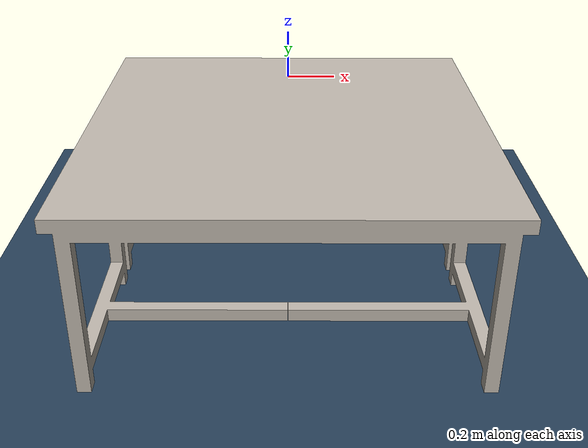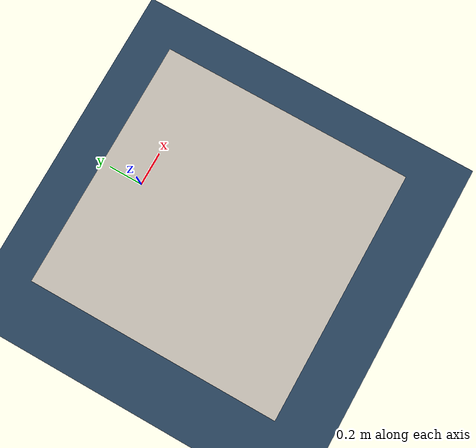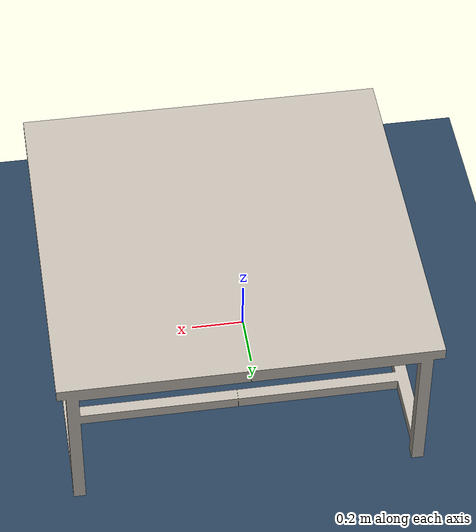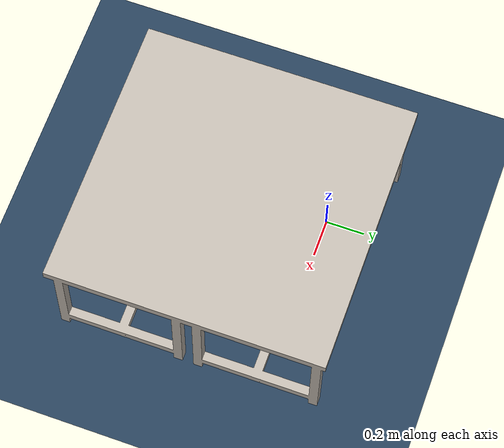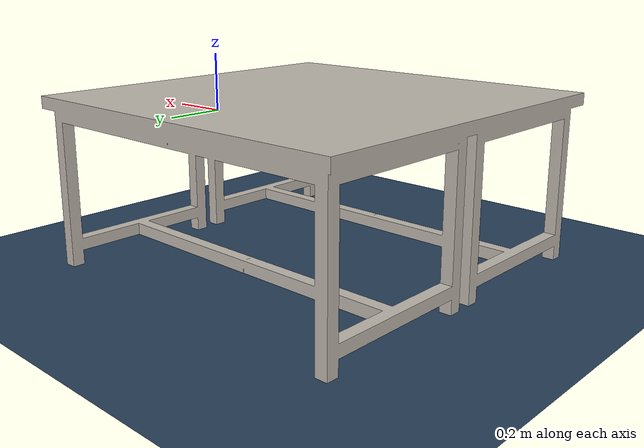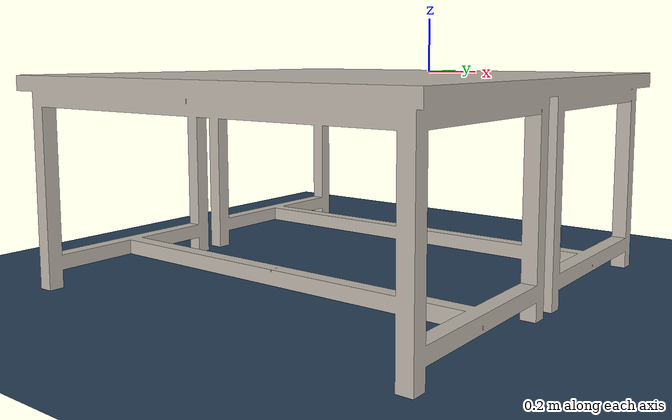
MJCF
<mujoco model="lab_scene">
  <compiler angle="radian" />

  <asset>
    <mesh name="lab_scene_visual_mesh" file="lab_scene/textured.obj" />
    <mesh name="lab_scene_collision_mesh" file="lab_scene/textured_box.stl" />
    <texture name="lab_scene_texture" type="2d" file="lab_scene/texture_map.png" />
    <material name="lab_scene_material" texture="lab_scene_texture" />

    <texture name="grid" type="2d" builtin="checker" width="512" height="512" rgb1=".1 .2 .3" rgb2=".2 .3 .4"/>
    <material name="grid" texture="grid" texrepeat="1 1" texuniform="true" reflectance=".2"/>
  </asset>

  <worldbody>
    <body name="lab_scene" pos="0 0 0" euler="0 0 0">
      <geom name="lab_scene_visual_geom" type="mesh" mesh="lab_scene_visual_mesh" material="lab_scene_material" pos="0.0 -0.508 -0.7" euler="0 0 -1.57079632679" contype="0" conaffinity="0" group="0" />

      <geom name="lab_scene_collision_geom" type="plane" size="0.762 0.762 0.05" pos="0.0 -0.508 0.0" euler="0 0 0" contype="1" conaffinity="1" group="3" />

      <inertial pos="0 0 0" euler="0 0 0" mass="10.0" diaginertia="0.001 0.001 0.001" />
    </body>

    <body name="lab_scene_floor" pos="0 0 -0.7" euler="0 0 0">
      <geom name="floor" pos="0 0 0" size="0 0 .05" type="plane" material="grid" condim="3" contype="0" conaffinity="0" />
    </body>
  </worldbody>
</mujoco>
